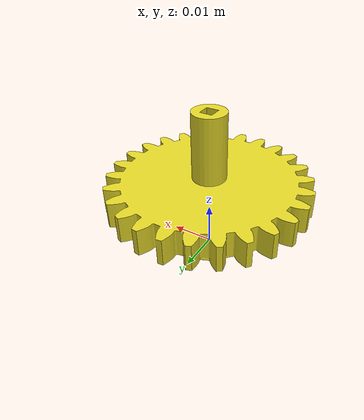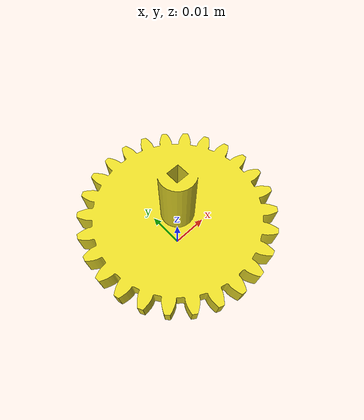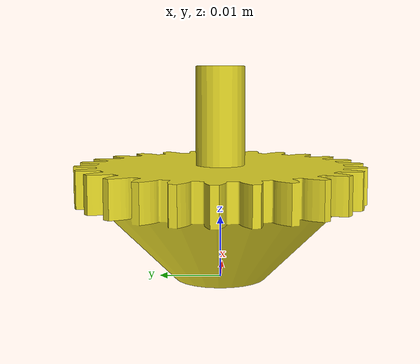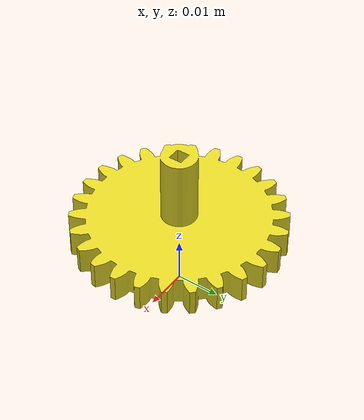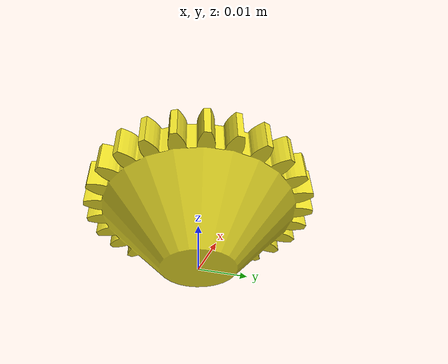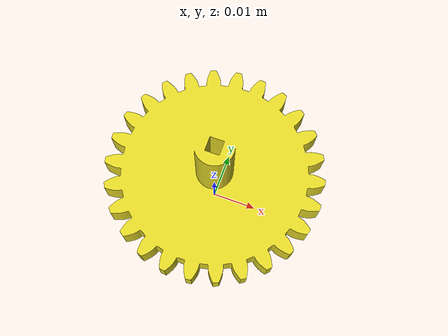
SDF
<?xml version='1.0'?>
<sdf version='1.6'>
  <model name='Small_Gear'>
    <link name='gear_base'>
      <inertial>
        <mass>0.005</mass>
        <inertia>
          <ixx>2.40e-7</ixx>
          <ixy>0</ixy>
          <ixz>0</ixz>
          <iyy>2.40e-7</iyy>
          <iyz>0</iyz>
          <izz>2.14e-7</izz>
        </inertia>
      </inertial>
      <pose frame=''>0 0 0.008926 0 -0 0</pose>
      <visual name='visual'>
        <pose frame=''>0 0 -0.008926 0 -0 0</pose>
        <geometry>
          <mesh>
            <scale>0.0254 0.0254 0.0254</scale>
            <uri>model://meshes/small_gear_Centered_ZeroZmin.stl</uri>
          </mesh>
        </geometry>
        <material>
          <lighting>1</lighting>
          <script>
            <uri>file://media/materials/scripts/gazebo.material</uri>
            <name>Gazebo/Yellow</name>
          </script>
          <shader type='pixel'/>
        </material>
        <transparency>0</transparency>
        <cast_shadows>1</cast_shadows>
      </visual>
      <collision name='collision'>
        <laser_retro>0</laser_retro>
        <max_contacts>100</max_contacts>
        <pose frame=''>0 0 0 0 -0 0</pose>
        <geometry>
          <cylinder>
            <radius>0.009250</radius>
            <length>0.017851</length>
          </cylinder>
        </geometry>
        <surface>
          <friction>
            <ode>
              <mu>2000</mu>
              <mu2>2000</mu2>
              <fdir1>0 0 0</fdir1>
              <slip1>0</slip1>
              <slip2>0</slip2>
            </ode>
            <torsional>
              <coefficient>1</coefficient>
              <patch_radius>0</patch_radius>
              <surface_radius>0</surface_radius>
              <use_patch_radius>1</use_patch_radius>
              <ode>
                <slip>0</slip>
              </ode>
            </torsional>
          </friction>
          <bounce>
            <restitution_coefficient>0</restitution_coefficient>
            <threshold>1e+06</threshold>
          </bounce>
          <contact>
            <collide_without_contact>0</collide_without_contact>
            <collide_without_contact_bitmask>1</collide_without_contact_bitmask>
            <collide_bitmask>1</collide_bitmask>
            <ode>
              <soft_cfm>0</soft_cfm>
              <soft_erp>0.2</soft_erp>
              <kp>1e+13</kp>
              <kd>1</kd>
              <max_vel>0.01</max_vel>
              <min_depth>0</min_depth>
            </ode>
            <bullet>
              <split_impulse>1</split_impulse>
              <split_impulse_penetration_threshold>-0.01</split_impulse_penetration_threshold>
              <soft_cfm>0</soft_cfm>
              <soft_erp>0.2</soft_erp>
              <kp>1e+13</kp>
              <kd>1</kd>
            </bullet>
          </contact>
        </surface>
      </collision>
    </link>

    <link name='gear_axle'>
      <inertial>
        <mass>0.001</mass>
        <inertia>
          <ixx>2.6e-8</ixx>
          <ixy>0</ixy>
          <ixz>0</ixz>
          <iyy>2.6e-8</iyy>
          <iyz>0</iyz>
          <izz>7.2e-9</izz>
        </inertia>
      </inertial>
      <pose>0 0 0.026909 0 -0 0</pose>
      <collision name='collision'>
        <laser_retro>0</laser_retro>
        <max_contacts>100</max_contacts>
        <pose frame=''>0 0 0 0 -0 0</pose>
        <geometry>
          <cylinder>
            <radius>0.003807</radius>
            <length>0.016514</length>
          </cylinder>
        </geometry>
        <surface>
          <friction>
            <ode>
              <mu>2000</mu>
              <mu2>2000</mu2>
              <fdir1>0 0 0</fdir1>
              <slip1>0</slip1>
              <slip2>0</slip2>
            </ode>
            <torsional>
              <coefficient>1</coefficient>
              <patch_radius>0</patch_radius>
              <surface_radius>0</surface_radius>
              <use_patch_radius>1</use_patch_radius>
              <ode>
                <slip>0</slip>
              </ode>
            </torsional>
          </friction>
          <bounce>
            <restitution_coefficient>0</restitution_coefficient>
            <threshold>1e+06</threshold>
          </bounce>
          <contact>
            <collide_without_contact>0</collide_without_contact>
            <collide_without_contact_bitmask>1</collide_without_contact_bitmask>
            <collide_bitmask>1</collide_bitmask>
            <ode>
              <soft_cfm>0</soft_cfm>
              <soft_erp>0.2</soft_erp>
              <kp>1e+13</kp>
              <kd>1</kd>
              <max_vel>0.01</max_vel>
              <min_depth>0</min_depth>
            </ode>
            <bullet>
              <split_impulse>1</split_impulse>
              <split_impulse_penetration_threshold>-0.01</split_impulse_penetration_threshold>
              <soft_cfm>0</soft_cfm>
              <soft_erp>0.2</soft_erp>
              <kp>1e+13</kp>
              <kd>1</kd>
            </bullet>
          </contact>
        </surface>
      </collision>
    </link>
    <joint name="joint1" type="fixed">
      <parent>gear_base</parent>
      <child>gear_axle</child>
    </joint>
    <static>0</static>
    <allow_auto_disable>1</allow_auto_disable>
  </model>
</sdf>
